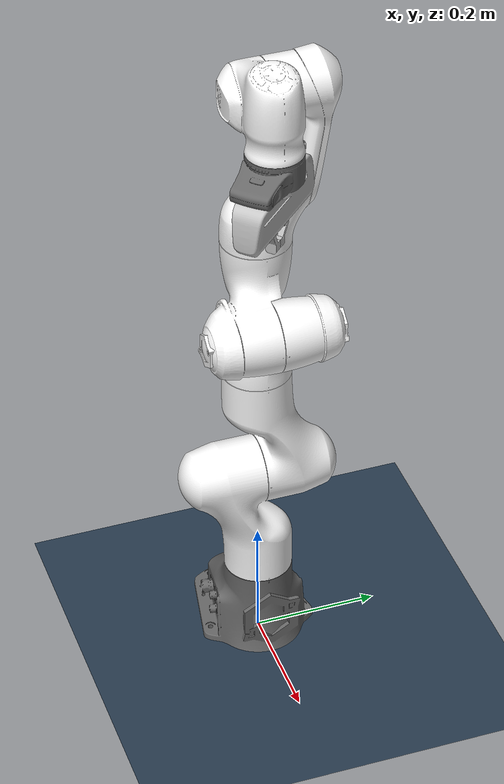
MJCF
<!--franka panda platform with gripper but not control.-->
<mujoco model="franka_panda_platform">

	<include file="assets/assets.xml"></include>

	<worldbody>
		<geom name="floor" pos="0. 0. 0" size="3 3 .125" type="plane" condim="4" material="floorplane" contype="1" conaffinity="1"></geom>
		<light directional="true" diffuse='1.0 1.0 1.0' pos="0 0 3" dir="0 0 -1"/>
		<include file="franka_panda/franka_panda.xml"></include>
	</worldbody>

    <include file="assets/actuator.xml"></include>

</mujoco>

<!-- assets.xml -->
<mujocoinclude>

	<compiler angle="radian"
              coordinate="local"
              inertiafromgeom='auto'
              meshdir="meshes/visual"
              texturedir="textures"  />

    <option timestep="0.01"
            apirate="200"
            iterations="20"
            noslip_iterations="20"

            tolerance="1e-10"
			impratio="10"
			gravity="0 0 -9.81"
			solver="PGS"
			cone="elliptic"
    />

    <size njmax="1500" nconmax="500" nstack="5000000" />

    <visual>
        <map fogstart="3" fogend="5" force="0.1" znear="0.1"/>
        <quality shadowsize="4096" offsamples="8" />
        <global offwidth="3024" offheight="1680"/>
    </visual>

    <default class="main">

        <joint limited="true" margin="0.0" armature="0.001" damping="0.05" frictionloss="0.000" />
        <geom friction="1 0.5 0.1" margin="0.0" condim="4" solimp="0.95 0.99 0.01" />
        <site size="0.005 0 0" rgba="0.4 0.9 0.4 1" />

        <general ctrllimited="true" ctrlrange="-3.14 3.14" />

        <default class="Arm">
            <joint margin="0.0005" armature="0.0" damping="500" stiffness="0" frictionloss="0.000" limited="true"/>
            <default class="Effector">
                <geom type="mesh" contype="1" conaffinity="0" condim="4" group="4"/>
                <joint margin="0.0" armature="0.01" damping="1" frictionloss="0.0" limited="true"/>
            </default>
        </default>

        <default class="Touch">
            <site size="0.009 0.004 0.013" group="4" type="box" rgba="0.8 0.8 0.8 0.15" />
        </default>

        <default class="Collision">
            <geom contype="1" conaffinity="1" group="4" condim="4" rgba="0.5 0.5 0.5 0.5" />
        </default>

        <default class="Visual">
            <geom type="mesh" contype="0" conaffinity="0" group="1" rgba="0.75294 0.75294 0.75294 1" />
        </default>

        <default class="free">
            <joint type="free" limited="false" armature="0" damping="0" />
        </default>

        <default class="Object">
            <geom material="gripper_mat" contype="1" conaffinity="1" friction="1 1 1" condim="4" group="4" rgba="0.5 0.5 0.5 0.5" />
        </default>

        <default class="finger">
            <joint axis="0 1 0" type="slide" range="0 0.04"/>
        </default>

        <!-- other -->

    </default>

    <!--texture & material-->
    <asset>
        <texture builtin="checker" height="512" name="texplane" rgb1=".2 .3 .4" rgb2=".1 0.15 0.2" type="2d" width="512"/>
        <material name="floorplane" reflectance="0.3" texrepeat="1 1" texture="texplane" texuniform="true"/>
    </asset>

    <!--mesh-->
    <asset>

        <!-- franka panda meshes-->

        <mesh name="link0" file="link0.stl" />
        <mesh name="link1" file="link1.stl" />
        <mesh name="link2" file="link2.stl" />
        <mesh name="link3" file="link3.stl" />
        <mesh name="link4" file="link4.stl" />
        <mesh name="link5" file="link5.stl" />
        <mesh name="link6" file="link6.stl" />
        <mesh name="link7" file="link7.stl" />
        <mesh name="hand" file="hand.stl" />
        <mesh name="left_finger" file="finger.stl" />
        <mesh name="right_finger" file="finger.stl" />
    </asset>

</mujocoinclude>

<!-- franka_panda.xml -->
<mujoco model="franka_panda">
    <body childclass="Arm" name="franka_panda" pos="0 0 0"  >
        <geom class="Visual"  rgba="0.4 0.4 0.4 1" mesh="link0" />
        <body name="panda_link1" pos="0 0 0.333">
            <inertial pos="0.003875 0.002081 -0.175" quat="0.711549 0.00634377 -0.0131124 0.702485" mass="4.97068" diaginertia="0.707137 0.703435 0.00852456" />
            <joint name="panda_joint1" pos="0 0 0" axis="0 0 1" limited="true" range="-2.8973 2.8973" />
            <geom class="Visual" rgba="1 1 1 1" mesh="link1" />
            <body name="panda_link2" pos="0 0 0" quat="0.707107 -0.707107 0 0">
                <inertial pos="-0.003141 -0.02872 0.003495" quat="-0.168175 0.828366 -0.122878 0.520027" mass="0.646926" diaginertia="0.0310326 0.0283001 0.00273425" />
                <joint name="panda_joint2" pos="0 0 0" axis="0 0 1" limited="true" range="-1.7628 1.7628" />
                <geom class="Visual" rgba="1 1 1 1" mesh="link2" />
                <body name="panda_link3" pos="0 -0.316 0" quat="0.707107 0.707107 0 0">
                    <inertial pos="0.027518 0.039252 -0.066502" quat="0.662769 -0.00678331 0.252053 0.705096" mass="3.2286" diaginertia="0.0415014 0.0414793 0.00124635" />
                    <joint name="panda_joint3" pos="0 0 0" axis="0 0 1" limited="true" range="-2.8973 2.8973" />
                    <geom class="Visual" rgba="1 1 1 1" mesh="link3" />
                    <body name="panda_link4" pos="0.0825 0 0" quat="0.707107 0.707107 0 0">
                        <inertial pos="-0.05317 0.104419 0.027454" quat="0.65058 0.529822 -0.0962034 0.535518" mass="3.5879" diaginertia="0.0349596 0.0281483 0.0106201" />
                        <joint name="panda_joint4" pos="0 0 0" axis="0 0 1" limited="true" range="-3.0718 -0.0698" />
                        <geom class="Visual" rgba="1 1 1 1" mesh="link4" />
                        <body name="panda_link5" pos="-0.0825 0.384 0" quat="0.707107 -0.707107 0 0">
                            <inertial pos="-0.011953 0.041065 -0.038437" quat="0.987313 -0.0121954 0.0719187 -0.141037" mass="1.22595" diaginertia="0.0367625 0.0288531 0.00803437" />
                            <joint name="panda_joint5" pos="0 0 0" axis="0 0 1" limited="true" range="-2.8973 2.8973" />
                            <geom class="Visual" rgba="1 1 1 1" mesh="link5" />
                            <body name="panda_link6" pos="0 0 0" quat="0.707107 0.707107 0 0">
                                <inertial pos="0.060149 -0.014117 -0.010517" quat="0.101075 0.59332 0.0287227 0.798079" mass="1.66656" diaginertia="0.00584276 0.00431037 0.00159787" />
                                <joint name="panda_joint6" pos="0 0 0" axis="0 0 1" limited="true" range="-0.0175 3.7525" />
                                <geom class="Visual" rgba="1 1 1 1" mesh="link6" />
                                <body name="panda_link7" pos="0.088 0 0" quat="0.707107 0.707107 0 0">
                                    <inertial pos="0.010517 -0.004252 0.061597" quat="0.992939 -0.0762041 0.0733595 -0.0537067" mass="0.735522" diaginertia="0.0127345 0.0101055 0.00451803" />
                                    <joint name="panda_joint7" pos="0 0 0" axis="0 0 1" limited="true" range="-2.8973 2.8973" />
                                    <geom class="Visual" rgba="0.4 0.4 0.4 1" mesh="link7" />
                                    <body name="robot_end" pos="0 0 0.1068">
                                        <site name="robot_end" size="0.005 0.005 0.005" pos="0 0 0" type="sphere" rgba="0 1 0 0.5"/>
                                    </body>
                                    <body name="hand" pos="0 0 0.107" quat="0.9238795 0 0 -0.3826834">
                                        <inertial mass="0.73" pos="-0.01 0 0.03" diaginertia="0.001 0.0025 0.0017"/>
                                        <geom class="Visual" mesh="hand" />
                                        <body name="left_finger" pos="0 0 0.0584">
                                            <inertial mass="0.015" pos="0 0 0" diaginertia="2.375e-6 2.375e-6 7.5e-7"/>
                                            <geom class="Visual" mesh="left_finger" />
                                        </body>
                                        <body name="right_finger" pos="0 0 0.0584" quat="0 0 0 1">
                                            <inertial mass="0.015" pos="0 0 0" diaginertia="2.375e-6 2.375e-6 7.5e-7"/>
                                            <geom class="Visual" mesh="right_finger" />
                                        </body>
                                    </body>
                                </body>
                            </body>
                        </body>
                    </body>
                </body>
            </body>
        </body>
    </body>
</mujoco>

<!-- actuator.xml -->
<mujoco>

    <actuator>

        <!-- franka_panda arm position control -->
        <position name="panda_joint1" ctrllimited="true" ctrlrange="-2.8973 2.8973" joint="panda_joint1" kp="10000"/>
        <position name="panda_joint2" ctrllimited="true" ctrlrange="-1.7628 1.7628" joint="panda_joint2" kp="10000"/>
        <position name="panda_joint3" ctrllimited="true" ctrlrange="-2.8973 2.8973" joint="panda_joint3" kp="10000"/>
        <position name="panda_joint4" ctrllimited="true" ctrlrange="-3.0718 -0.0698" joint="panda_joint4" kp="10000"/>
        <position name="panda_joint5" ctrllimited="true" ctrlrange="-2.8973 2.8973" joint="panda_joint5" kp="10000"/>
        <position name="panda_joint6" ctrllimited="true" ctrlrange="-0.0175 3.7525" joint="panda_joint6" kp="10000"/>
        <position name="panda_joint7" ctrllimited="true" ctrlrange="-2.8973 2.8973" joint="panda_joint7" kp="10000"/>
    </actuator>

</mujoco>
